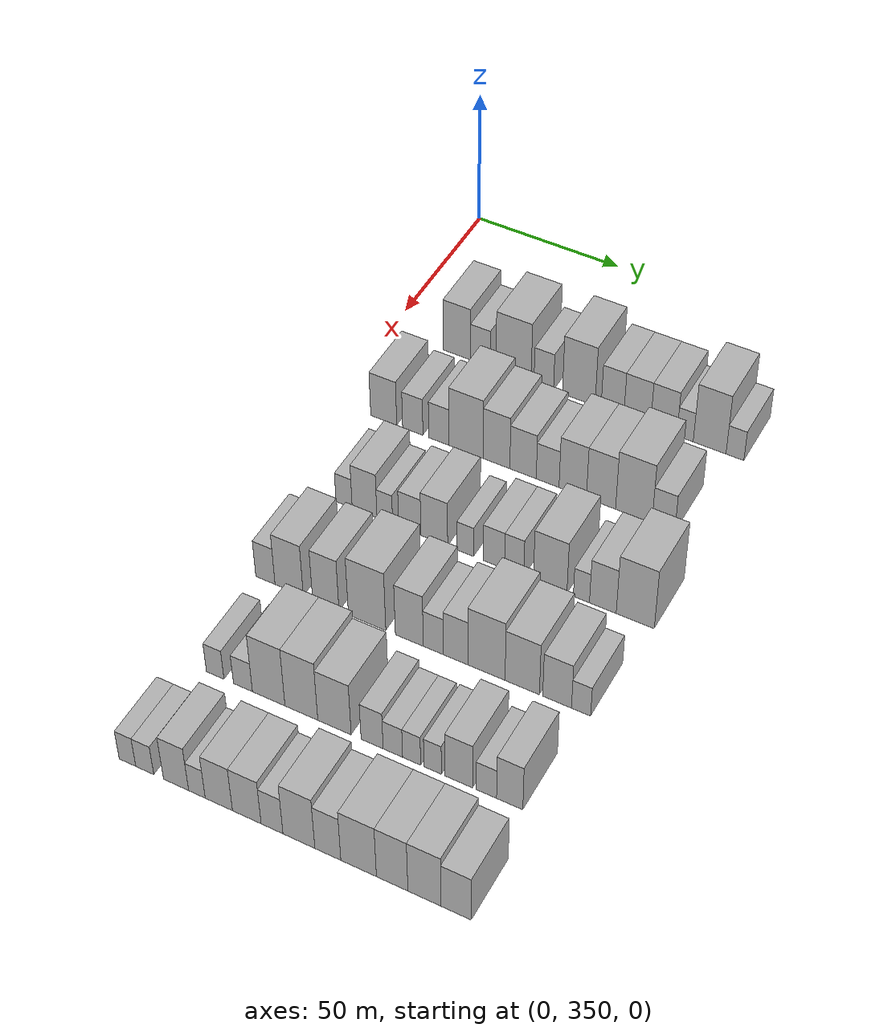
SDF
<sdf version="1.6">
 <world name="default">
  <model name="building_94">
   <static>1</static>
   <pose>50.0000 373.5735 0 0.000000 0.000000 0.000000</pose>
   <link name="link">
    <pose>0 0 10.50 0 0 0</pose>
    <collision name="collision"><geometry><box><size>20.0000 9.4008 21.0000</size></box></geometry></collision>
    <visual name="visual">
     <cast_shadows>0</cast_shadows>
     <geometry><box><size>20.0000 9.4008 21.0000</size></box></geometry>
     <material>
      <script>
       <uri>model://HANNAS_wall/materials/scripts</uri>
       <uri>model://HANNAS_wall/materials/textures</uri>
       <name>vrc/HANNAS_wall</name>
      </script>
     </material>
    </visual>
   </link>
  </model>
  <model name="building_95">
   <static>1</static>
   <pose>50.0000 381.6532 0 0.000000 0.000000 0.000000</pose>
   <link name="link">
    <pose>0 0 7.50 0 0 0</pose>
    <collision name="collision"><geometry><box><size>20.0000 6.7587 15.0000</size></box></geometry></collision>
    <visual name="visual">
     <cast_shadows>0</cast_shadows>
     <geometry><box><size>20.0000 6.7587 15.0000</size></box></geometry>
     <material>
      <script>
       <uri>model://HANNAS_wall/materials/scripts</uri>
       <uri>model://HANNAS_wall/materials/textures</uri>
       <name>vrc/HANNAS_wall</name>
      </script>
     </material>
    </visual>
   </link>
  </model>
  <model name="building_96">
   <static>1</static>
   <pose>50.0000 393.0215 0 0.000000 0.000000 0.000000</pose>
   <link name="link">
    <pose>0 0 12.00 0 0 0</pose>
    <collision name="collision"><geometry><box><size>20.0000 11.9779 24.0000</size></box></geometry></collision>
    <visual name="visual">
     <cast_shadows>0</cast_shadows>
     <geometry><box><size>20.0000 11.9779 24.0000</size></box></geometry>
     <material>
      <script>
       <uri>model://HANNAS_wall/materials/scripts</uri>
       <uri>model://HANNAS_wall/materials/textures</uri>
       <name>vrc/HANNAS_wall</name>
      </script>
     </material>
    </visual>
   </link>
  </model>
  <model name="building_97">
   <static>1</static>
   <pose>50.0000 403.3203 0 0.000000 0.000000 0.000000</pose>
   <link name="link">
    <pose>0 0 7.50 0 0 0</pose>
    <collision name="collision"><geometry><box><size>20.0000 6.6197 15.0000</size></box></geometry></collision>
    <visual name="visual">
     <cast_shadows>0</cast_shadows>
     <geometry><box><size>20.0000 6.6197 15.0000</size></box></geometry>
     <material>
      <script>
       <uri>model://HANNAS_wall/materials/scripts</uri>
       <uri>model://HANNAS_wall/materials/textures</uri>
       <name>vrc/HANNAS_wall</name>
      </script>
     </material>
    </visual>
   </link>
  </model>
  <model name="building_98">
   <static>1</static>
   <pose>50.0000 415.0914 0 0.000000 0.000000 0.000000</pose>
   <link name="link">
    <pose>0 0 12.00 0 0 0</pose>
    <collision name="collision"><geometry><box><size>20.0000 10.9224 24.0000</size></box></geometry></collision>
    <visual name="visual">
     <cast_shadows>0</cast_shadows>
     <geometry><box><size>20.0000 10.9224 24.0000</size></box></geometry>
     <material>
      <script>
       <uri>model://HANNAS_wall/materials/scripts</uri>
       <uri>model://HANNAS_wall/materials/textures</uri>
       <name>vrc/HANNAS_wall</name>
      </script>
     </material>
    </visual>
   </link>
  </model>
  <model name="building_99">
   <static>1</static>
   <pose>50.0000 426.3237 0 0.000000 0.000000 0.000000</pose>
   <link name="link">
    <pose>0 0 9.00 0 0 0</pose>
    <collision name="collision"><geometry><box><size>20.0000 7.5423 18.0000</size></box></geometry></collision>
    <visual name="visual">
     <cast_shadows>0</cast_shadows>
     <geometry><box><size>20.0000 7.5423 18.0000</size></box></geometry>
     <material>
      <script>
       <uri>model://HANNAS_wall/materials/scripts</uri>
       <uri>model://HANNAS_wall/materials/textures</uri>
       <name>vrc/HANNAS_wall</name>
      </script>
     </material>
    </visual>
   </link>
  </model>
  <model name="building_100">
   <static>1</static>
   <pose>50.0000 434.4855 0 0.000000 0.000000 0.000000</pose>
   <link name="link">
    <pose>0 0 9.00 0 0 0</pose>
    <collision name="collision"><geometry><box><size>20.0000 8.7814 18.0000</size></box></geometry></collision>
    <visual name="visual">
     <cast_shadows>0</cast_shadows>
     <geometry><box><size>20.0000 8.7814 18.0000</size></box></geometry>
     <material>
      <script>
       <uri>model://HANNAS_wall/materials/scripts</uri>
       <uri>model://HANNAS_wall/materials/textures</uri>
       <name>vrc/HANNAS_wall</name>
      </script>
     </material>
    </visual>
   </link>
  </model>
  <model name="building_101">
   <static>1</static>
   <pose>50.0000 443.1743 0 0.000000 0.000000 0.000000</pose>
   <link name="link">
    <pose>0 0 9.00 0 0 0</pose>
    <collision name="collision"><geometry><box><size>20.0000 8.5962 18.0000</size></box></geometry></collision>
    <visual name="visual">
     <cast_shadows>0</cast_shadows>
     <geometry><box><size>20.0000 8.5962 18.0000</size></box></geometry>
     <material>
      <script>
       <uri>model://HANNAS_wall/materials/scripts</uri>
       <uri>model://HANNAS_wall/materials/textures</uri>
       <name>vrc/HANNAS_wall</name>
      </script>
     </material>
    </visual>
   </link>
  </model>
  <model name="building_102">
   <static>1</static>
   <pose>50.0000 450.1158 0 0.000000 0.000000 0.000000</pose>
   <link name="link">
    <pose>0 0 6.00 0 0 0</pose>
    <collision name="collision"><geometry><box><size>20.0000 5.2868 12.0000</size></box></geometry></collision>
    <visual name="visual">
     <cast_shadows>0</cast_shadows>
     <geometry><box><size>20.0000 5.2868 12.0000</size></box></geometry>
     <material>
      <script>
       <uri>model://HANNAS_wall/materials/scripts</uri>
       <uri>model://HANNAS_wall/materials/textures</uri>
       <name>vrc/HANNAS_wall</name>
      </script>
     </material>
    </visual>
   </link>
  </model>
  <model name="building_103">
   <static>1</static>
   <pose>50.0000 458.0321 0 0.000000 0.000000 0.000000</pose>
   <link name="link">
    <pose>0 0 12.00 0 0 0</pose>
    <collision name="collision"><geometry><box><size>20.0000 10.5459 24.0000</size></box></geometry></collision>
    <visual name="visual">
     <cast_shadows>0</cast_shadows>
     <geometry><box><size>20.0000 10.5459 24.0000</size></box></geometry>
     <material>
      <script>
       <uri>model://HANNAS_wall/materials/scripts</uri>
       <uri>model://HANNAS_wall/materials/textures</uri>
       <name>vrc/HANNAS_wall</name>
      </script>
     </material>
    </visual>
   </link>
  </model>
  <model name="building_104">
   <static>1</static>
   <pose>50.0000 466.1558 0 0.000000 0.000000 0.000000</pose>
   <link name="link">
    <pose>0 0 6.00 0 0 0</pose>
    <collision name="collision"><geometry><box><size>20.0000 5.7013 12.0000</size></box></geometry></collision>
    <visual name="visual">
     <cast_shadows>0</cast_shadows>
     <geometry><box><size>20.0000 5.7013 12.0000</size></box></geometry>
     <material>
      <script>
       <uri>model://HANNAS_wall/materials/scripts</uri>
       <uri>model://HANNAS_wall/materials/textures</uri>
       <name>vrc/HANNAS_wall</name>
      </script>
     </material>
    </visual>
   </link>
  </model>
  <model name="building_225">
   <static>1</static>
   <pose>85.0000 367.4017 0 0.000000 0.000000 0.000000</pose>
   <link name="link">
    <pose>0 0 9.00 0 0 0</pose>
    <collision name="collision"><geometry><box><size>20.0000 8.8977 18.0000</size></box></geometry></collision>
    <visual name="visual">
     <cast_shadows>0</cast_shadows>
     <geometry><box><size>20.0000 8.8977 18.0000</size></box></geometry>
     <material>
      <script>
       <uri>model://HANNAS_wall/materials/scripts</uri>
       <uri>model://HANNAS_wall/materials/textures</uri>
       <name>vrc/HANNAS_wall</name>
      </script>
     </material>
    </visual>
   </link>
  </model>
  <model name="building_226">
   <static>1</static>
   <pose>85.0000 377.2938 0 0.000000 0.000000 0.000000</pose>
   <link name="link">
    <pose>0 0 7.50 0 0 0</pose>
    <collision name="collision"><geometry><box><size>20.0000 6.8866 15.0000</size></box></geometry></collision>
    <visual name="visual">
     <cast_shadows>0</cast_shadows>
     <geometry><box><size>20.0000 6.8866 15.0000</size></box></geometry>
     <material>
      <script>
       <uri>model://HANNAS_wall/materials/scripts</uri>
       <uri>model://HANNAS_wall/materials/textures</uri>
       <name>vrc/HANNAS_wall</name>
      </script>
     </material>
    </visual>
   </link>
  </model>
  <model name="building_227">
   <static>1</static>
   <pose>85.0000 386.1145 0 0.000000 0.000000 0.000000</pose>
   <link name="link">
    <pose>0 0 7.50 0 0 0</pose>
    <collision name="collision"><geometry><box><size>20.0000 6.7548 15.0000</size></box></geometry></collision>
    <visual name="visual">
     <cast_shadows>0</cast_shadows>
     <geometry><box><size>20.0000 6.7548 15.0000</size></box></geometry>
     <material>
      <script>
       <uri>model://HANNAS_wall/materials/scripts</uri>
       <uri>model://HANNAS_wall/materials/textures</uri>
       <name>vrc/HANNAS_wall</name>
      </script>
     </material>
    </visual>
   </link>
  </model>
  <model name="building_228">
   <static>1</static>
   <pose>85.0000 395.2129 0 0.000000 0.000000 0.000000</pose>
   <link name="link">
    <pose>0 0 12.00 0 0 0</pose>
    <collision name="collision"><geometry><box><size>20.0000 11.4420 24.0000</size></box></geometry></collision>
    <visual name="visual">
     <cast_shadows>0</cast_shadows>
     <geometry><box><size>20.0000 11.4420 24.0000</size></box></geometry>
     <material>
      <script>
       <uri>model://HANNAS_wall/materials/scripts</uri>
       <uri>model://HANNAS_wall/materials/textures</uri>
       <name>vrc/HANNAS_wall</name>
      </script>
     </material>
    </visual>
   </link>
  </model>
  <model name="building_229">
   <static>1</static>
   <pose>85.0000 405.3167 0 0.000000 0.000000 0.000000</pose>
   <link name="link">
    <pose>0 0 10.50 0 0 0</pose>
    <collision name="collision"><geometry><box><size>20.0000 8.7656 21.0000</size></box></geometry></collision>
    <visual name="visual">
     <cast_shadows>0</cast_shadows>
     <geometry><box><size>20.0000 8.7656 21.0000</size></box></geometry>
     <material>
      <script>
       <uri>model://HANNAS_wall/materials/scripts</uri>
       <uri>model://HANNAS_wall/materials/textures</uri>
       <name>vrc/HANNAS_wall</name>
      </script>
     </material>
    </visual>
   </link>
  </model>
  <model name="building_230">
   <static>1</static>
   <pose>85.0000 414.0182 0 0.000000 0.000000 0.000000</pose>
   <link name="link">
    <pose>0 0 9.00 0 0 0</pose>
    <collision name="collision"><geometry><box><size>20.0000 8.6374 18.0000</size></box></geometry></collision>
    <visual name="visual">
     <cast_shadows>0</cast_shadows>
     <geometry><box><size>20.0000 8.6374 18.0000</size></box></geometry>
     <material>
      <script>
       <uri>model://HANNAS_wall/materials/scripts</uri>
       <uri>model://HANNAS_wall/materials/textures</uri>
       <name>vrc/HANNAS_wall</name>
      </script>
     </material>
    </visual>
   </link>
  </model>
  <model name="building_231">
   <static>1</static>
   <pose>85.0000 422.0359 0 0.000000 0.000000 0.000000</pose>
   <link name="link">
    <pose>0 0 7.50 0 0 0</pose>
    <collision name="collision"><geometry><box><size>20.0000 7.3981 15.0000</size></box></geometry></collision>
    <visual name="visual">
     <cast_shadows>0</cast_shadows>
     <geometry><box><size>20.0000 7.3981 15.0000</size></box></geometry>
     <material>
      <script>
       <uri>model://HANNAS_wall/materials/scripts</uri>
       <uri>model://HANNAS_wall/materials/textures</uri>
       <name>vrc/HANNAS_wall</name>
      </script>
     </material>
    </visual>
   </link>
  </model>
  <model name="building_232">
   <static>1</static>
   <pose>85.0000 430.1456 0 0.000000 0.000000 0.000000</pose>
   <link name="link">
    <pose>0 0 10.50 0 0 0</pose>
    <collision name="collision"><geometry><box><size>20.0000 8.8214 21.0000</size></box></geometry></collision>
    <visual name="visual">
     <cast_shadows>0</cast_shadows>
     <geometry><box><size>20.0000 8.8214 21.0000</size></box></geometry>
     <material>
      <script>
       <uri>model://HANNAS_wall/materials/scripts</uri>
       <uri>model://HANNAS_wall/materials/textures</uri>
       <name>vrc/HANNAS_wall</name>
      </script>
     </material>
    </visual>
   </link>
  </model>
  <model name="building_233">
   <static>1</static>
   <pose>85.0000 439.2181 0 0.000000 0.000000 0.000000</pose>
   <link name="link">
    <pose>0 0 10.50 0 0 0</pose>
    <collision name="collision"><geometry><box><size>20.0000 9.3236 21.0000</size></box></geometry></collision>
    <visual name="visual">
     <cast_shadows>0</cast_shadows>
     <geometry><box><size>20.0000 9.3236 21.0000</size></box></geometry>
     <material>
      <script>
       <uri>model://HANNAS_wall/materials/scripts</uri>
       <uri>model://HANNAS_wall/materials/textures</uri>
       <name>vrc/HANNAS_wall</name>
      </script>
     </material>
    </visual>
   </link>
  </model>
  <model name="building_234">
   <static>1</static>
   <pose>85.0000 449.6372 0 0.000000 0.000000 0.000000</pose>
   <link name="link">
    <pose>0 0 12.00 0 0 0</pose>
    <collision name="collision"><geometry><box><size>20.0000 11.5146 24.0000</size></box></geometry></collision>
    <visual name="visual">
     <cast_shadows>0</cast_shadows>
     <geometry><box><size>20.0000 11.5146 24.0000</size></box></geometry>
     <material>
      <script>
       <uri>model://HANNAS_wall/materials/scripts</uri>
       <uri>model://HANNAS_wall/materials/textures</uri>
       <name>vrc/HANNAS_wall</name>
      </script>
     </material>
    </visual>
   </link>
  </model>
  <model name="building_235">
   <static>1</static>
   <pose>85.0000 458.9700 0 0.000000 0.000000 0.000000</pose>
   <link name="link">
    <pose>0 0 7.50 0 0 0</pose>
    <collision name="collision"><geometry><box><size>20.0000 7.1510 15.0000</size></box></geometry></collision>
    <visual name="visual">
     <cast_shadows>0</cast_shadows>
     <geometry><box><size>20.0000 7.1510 15.0000</size></box></geometry>
     <material>
      <script>
       <uri>model://HANNAS_wall/materials/scripts</uri>
       <uri>model://HANNAS_wall/materials/textures</uri>
       <name>vrc/HANNAS_wall</name>
      </script>
     </material>
    </visual>
   </link>
  </model>
  <model name="building_358">
   <static>1</static>
   <pose>120.0000 373.9284 0 0.000000 0.000000 0.000000</pose>
   <link name="link">
    <pose>0 0 6.00 0 0 0</pose>
    <collision name="collision"><geometry><box><size>20.0000 5.3863 12.0000</size></box></geometry></collision>
    <visual name="visual">
     <cast_shadows>0</cast_shadows>
     <geometry><box><size>20.0000 5.3863 12.0000</size></box></geometry>
     <material>
      <script>
       <uri>model://HANNAS_wall/materials/scripts</uri>
       <uri>model://HANNAS_wall/materials/textures</uri>
       <name>vrc/HANNAS_wall</name>
      </script>
     </material>
    </visual>
   </link>
  </model>
  <model name="building_359">
   <static>1</static>
   <pose>120.0000 380.7170 0 0.000000 0.000000 0.000000</pose>
   <link name="link">
    <pose>0 0 9.00 0 0 0</pose>
    <collision name="collision"><geometry><box><size>20.0000 8.1909 18.0000</size></box></geometry></collision>
    <visual name="visual">
     <cast_shadows>0</cast_shadows>
     <geometry><box><size>20.0000 8.1909 18.0000</size></box></geometry>
     <material>
      <script>
       <uri>model://HANNAS_wall/materials/scripts</uri>
       <uri>model://HANNAS_wall/materials/textures</uri>
       <name>vrc/HANNAS_wall</name>
      </script>
     </material>
    </visual>
   </link>
  </model>
  <model name="building_360">
   <static>1</static>
   <pose>120.0000 387.3831 0 0.000000 0.000000 0.000000</pose>
   <link name="link">
    <pose>0 0 6.00 0 0 0</pose>
    <collision name="collision"><geometry><box><size>20.0000 5.1412 12.0000</size></box></geometry></collision>
    <visual name="visual">
     <cast_shadows>0</cast_shadows>
     <geometry><box><size>20.0000 5.1412 12.0000</size></box></geometry>
     <material>
      <script>
       <uri>model://HANNAS_wall/materials/scripts</uri>
       <uri>model://HANNAS_wall/materials/textures</uri>
       <name>vrc/HANNAS_wall</name>
      </script>
     </material>
    </visual>
   </link>
  </model>
  <model name="building_361">
   <static>1</static>
   <pose>120.0000 395.5715 0 0.000000 0.000000 0.000000</pose>
   <link name="link">
    <pose>0 0 7.50 0 0 0</pose>
    <collision name="collision"><geometry><box><size>20.0000 7.2357 15.0000</size></box></geometry></collision>
    <visual name="visual">
     <cast_shadows>0</cast_shadows>
     <geometry><box><size>20.0000 7.2357 15.0000</size></box></geometry>
     <material>
      <script>
       <uri>model://HANNAS_wall/materials/scripts</uri>
       <uri>model://HANNAS_wall/materials/textures</uri>
       <name>vrc/HANNAS_wall</name>
      </script>
     </material>
    </visual>
   </link>
  </model>
  <model name="building_362">
   <static>1</static>
   <pose>120.0000 403.4983 0 0.000000 0.000000 0.000000</pose>
   <link name="link">
    <pose>0 0 9.00 0 0 0</pose>
    <collision name="collision"><geometry><box><size>20.0000 8.6179 18.0000</size></box></geometry></collision>
    <visual name="visual">
     <cast_shadows>0</cast_shadows>
     <geometry><box><size>20.0000 8.6179 18.0000</size></box></geometry>
     <material>
      <script>
       <uri>model://HANNAS_wall/materials/scripts</uri>
       <uri>model://HANNAS_wall/materials/textures</uri>
       <name>vrc/HANNAS_wall</name>
      </script>
     </material>
    </visual>
   </link>
  </model>
  <model name="building_363">
   <static>1</static>
   <pose>120.0000 413.4735 0 0.000000 0.000000 0.000000</pose>
   <link name="link">
    <pose>0 0 6.00 0 0 0</pose>
    <collision name="collision"><geometry><box><size>20.0000 5.3325 12.0000</size></box></geometry></collision>
    <visual name="visual">
     <cast_shadows>0</cast_shadows>
     <geometry><box><size>20.0000 5.3325 12.0000</size></box></geometry>
     <material>
      <script>
       <uri>model://HANNAS_wall/materials/scripts</uri>
       <uri>model://HANNAS_wall/materials/textures</uri>
       <name>vrc/HANNAS_wall</name>
      </script>
     </material>
    </visual>
   </link>
  </model>
  <model name="building_364">
   <static>1</static>
   <pose>120.0000 422.5441 0 0.000000 0.000000 0.000000</pose>
   <link name="link">
    <pose>0 0 7.50 0 0 0</pose>
    <collision name="collision"><geometry><box><size>20.0000 6.8087 15.0000</size></box></geometry></collision>
    <visual name="visual">
     <cast_shadows>0</cast_shadows>
     <geometry><box><size>20.0000 6.8087 15.0000</size></box></geometry>
     <material>
      <script>
       <uri>model://HANNAS_wall/materials/scripts</uri>
       <uri>model://HANNAS_wall/materials/textures</uri>
       <name>vrc/HANNAS_wall</name>
      </script>
     </material>
    </visual>
   </link>
  </model>
  <model name="building_365">
   <static>1</static>
   <pose>120.0000 428.9756 0 0.000000 0.000000 0.000000</pose>
   <link name="link">
    <pose>0 0 7.50 0 0 0</pose>
    <collision name="collision"><geometry><box><size>20.0000 6.0543 15.0000</size></box></geometry></collision>
    <visual name="visual">
     <cast_shadows>0</cast_shadows>
     <geometry><box><size>20.0000 6.0543 15.0000</size></box></geometry>
     <material>
      <script>
       <uri>model://HANNAS_wall/materials/scripts</uri>
       <uri>model://HANNAS_wall/materials/textures</uri>
       <name>vrc/HANNAS_wall</name>
      </script>
     </material>
    </visual>
   </link>
  </model>
  <model name="building_366">
   <static>1</static>
   <pose>120.0000 440.2151 0 0.000000 0.000000 0.000000</pose>
   <link name="link">
    <pose>0 0 10.50 0 0 0</pose>
    <collision name="collision"><geometry><box><size>20.0000 10.4247 21.0000</size></box></geometry></collision>
    <visual name="visual">
     <cast_shadows>0</cast_shadows>
     <geometry><box><size>20.0000 10.4247 21.0000</size></box></geometry>
     <material>
      <script>
       <uri>model://HANNAS_wall/materials/scripts</uri>
       <uri>model://HANNAS_wall/materials/textures</uri>
       <name>vrc/HANNAS_wall</name>
      </script>
     </material>
    </visual>
   </link>
  </model>
  <model name="building_367">
   <static>1</static>
   <pose>120.0000 449.9105 0 0.000000 0.000000 0.000000</pose>
   <link name="link">
    <pose>0 0 6.00 0 0 0</pose>
    <collision name="collision"><geometry><box><size>20.0000 4.9662 12.0000</size></box></geometry></collision>
    <visual name="visual">
     <cast_shadows>0</cast_shadows>
     <geometry><box><size>20.0000 4.9662 12.0000</size></box></geometry>
     <material>
      <script>
       <uri>model://HANNAS_wall/materials/scripts</uri>
       <uri>model://HANNAS_wall/materials/textures</uri>
       <name>vrc/HANNAS_wall</name>
      </script>
     </material>
    </visual>
   </link>
  </model>
  <model name="building_368">
   <static>1</static>
   <pose>120.0000 456.4902 0 0.000000 0.000000 0.000000</pose>
   <link name="link">
    <pose>0 0 9.00 0 0 0</pose>
    <collision name="collision"><geometry><box><size>20.0000 8.1932 18.0000</size></box></geometry></collision>
    <visual name="visual">
     <cast_shadows>0</cast_shadows>
     <geometry><box><size>20.0000 8.1932 18.0000</size></box></geometry>
     <material>
      <script>
       <uri>model://HANNAS_wall/materials/scripts</uri>
       <uri>model://HANNAS_wall/materials/textures</uri>
       <name>vrc/HANNAS_wall</name>
      </script>
     </material>
    </visual>
   </link>
  </model>
  <model name="building_369">
   <static>1</static>
   <pose>120.0000 466.3614 0 0.000000 0.000000 0.000000</pose>
   <link name="link">
    <pose>0 0 12.00 0 0 0</pose>
    <collision name="collision"><geometry><box><size>20.0000 11.5491 24.0000</size></box></geometry></collision>
    <visual name="visual">
     <cast_shadows>0</cast_shadows>
     <geometry><box><size>20.0000 11.5491 24.0000</size></box></geometry>
     <material>
      <script>
       <uri>model://HANNAS_wall/materials/scripts</uri>
       <uri>model://HANNAS_wall/materials/textures</uri>
       <name>vrc/HANNAS_wall</name>
      </script>
     </material>
    </visual>
   </link>
  </model>
  <model name="building_486">
   <static>1</static>
   <pose>155.0000 368.7155 0 0.000000 0.000000 0.000000</pose>
   <link name="link">
    <pose>0 0 7.50 0 0 0</pose>
    <collision name="collision"><geometry><box><size>20.0000 6.2673 15.0000</size></box></geometry></collision>
    <visual name="visual">
     <cast_shadows>0</cast_shadows>
     <geometry><box><size>20.0000 6.2673 15.0000</size></box></geometry>
     <material>
      <script>
       <uri>model://HANNAS_wall/materials/scripts</uri>
       <uri>model://HANNAS_wall/materials/textures</uri>
       <name>vrc/HANNAS_wall</name>
      </script>
     </material>
    </visual>
   </link>
  </model>
  <model name="building_487">
   <static>1</static>
   <pose>155.0000 376.4450 0 0.000000 0.000000 0.000000</pose>
   <link name="link">
    <pose>0 0 10.50 0 0 0</pose>
    <collision name="collision"><geometry><box><size>20.0000 9.1917 21.0000</size></box></geometry></collision>
    <visual name="visual">
     <cast_shadows>0</cast_shadows>
     <geometry><box><size>20.0000 9.1917 21.0000</size></box></geometry>
     <material>
      <script>
       <uri>model://HANNAS_wall/materials/scripts</uri>
       <uri>model://HANNAS_wall/materials/textures</uri>
       <name>vrc/HANNAS_wall</name>
      </script>
     </material>
    </visual>
   </link>
  </model>
  <model name="building_488">
   <static>1</static>
   <pose>155.0000 388.2661 0 0.000000 0.000000 0.000000</pose>
   <link name="link">
    <pose>0 0 10.50 0 0 0</pose>
    <collision name="collision"><geometry><box><size>20.0000 8.4505 21.0000</size></box></geometry></collision>
    <visual name="visual">
     <cast_shadows>0</cast_shadows>
     <geometry><box><size>20.0000 8.4505 21.0000</size></box></geometry>
     <material>
      <script>
       <uri>model://HANNAS_wall/materials/scripts</uri>
       <uri>model://HANNAS_wall/materials/textures</uri>
       <name>vrc/HANNAS_wall</name>
      </script>
     </material>
    </visual>
   </link>
  </model>
  <model name="building_489">
   <static>1</static>
   <pose>155.0000 401.4040 0 0.000000 0.000000 0.000000</pose>
   <link name="link">
    <pose>0 0 12.00 0 0 0</pose>
    <collision name="collision"><geometry><box><size>20.0000 11.8253 24.0000</size></box></geometry></collision>
    <visual name="visual">
     <cast_shadows>0</cast_shadows>
     <geometry><box><size>20.0000 11.8253 24.0000</size></box></geometry>
     <material>
      <script>
       <uri>model://HANNAS_wall/materials/scripts</uri>
       <uri>model://HANNAS_wall/materials/textures</uri>
       <name>vrc/HANNAS_wall</name>
      </script>
     </material>
    </visual>
   </link>
  </model>
  <model name="building_490">
   <static>1</static>
   <pose>155.0000 414.6759 0 0.000000 0.000000 0.000000</pose>
   <link name="link">
    <pose>0 0 10.50 0 0 0</pose>
    <collision name="collision"><geometry><box><size>20.0000 8.7185 21.0000</size></box></geometry></collision>
    <visual name="visual">
     <cast_shadows>0</cast_shadows>
     <geometry><box><size>20.0000 8.7185 21.0000</size></box></geometry>
     <material>
      <script>
       <uri>model://HANNAS_wall/materials/scripts</uri>
       <uri>model://HANNAS_wall/materials/textures</uri>
       <name>vrc/HANNAS_wall</name>
      </script>
     </material>
    </visual>
   </link>
  </model>
  <model name="building_491">
   <static>1</static>
   <pose>155.0000 422.1249 0 0.000000 0.000000 0.000000</pose>
   <link name="link">
    <pose>0 0 7.50 0 0 0</pose>
    <collision name="collision"><geometry><box><size>20.0000 6.1794 15.0000</size></box></geometry></collision>
    <visual name="visual">
     <cast_shadows>0</cast_shadows>
     <geometry><box><size>20.0000 6.1794 15.0000</size></box></geometry>
     <material>
      <script>
       <uri>model://HANNAS_wall/materials/scripts</uri>
       <uri>model://HANNAS_wall/materials/textures</uri>
       <name>vrc/HANNAS_wall</name>
      </script>
     </material>
    </visual>
   </link>
  </model>
  <model name="building_492">
   <static>1</static>
   <pose>155.0000 428.9539 0 0.000000 0.000000 0.000000</pose>
   <link name="link">
    <pose>0 0 9.00 0 0 0</pose>
    <collision name="collision"><geometry><box><size>20.0000 7.4786 18.0000</size></box></geometry></collision>
    <visual name="visual">
     <cast_shadows>0</cast_shadows>
     <geometry><box><size>20.0000 7.4786 18.0000</size></box></geometry>
     <material>
      <script>
       <uri>model://HANNAS_wall/materials/scripts</uri>
       <uri>model://HANNAS_wall/materials/textures</uri>
       <name>vrc/HANNAS_wall</name>
      </script>
     </material>
    </visual>
   </link>
  </model>
  <model name="building_493">
   <static>1</static>
   <pose>155.0000 438.3753 0 0.000000 0.000000 0.000000</pose>
   <link name="link">
    <pose>0 0 12.00 0 0 0</pose>
    <collision name="collision"><geometry><box><size>20.0000 11.3643 24.0000</size></box></geometry></collision>
    <visual name="visual">
     <cast_shadows>0</cast_shadows>
     <geometry><box><size>20.0000 11.3643 24.0000</size></box></geometry>
     <material>
      <script>
       <uri>model://HANNAS_wall/materials/scripts</uri>
       <uri>model://HANNAS_wall/materials/textures</uri>
       <name>vrc/HANNAS_wall</name>
      </script>
     </material>
    </visual>
   </link>
  </model>
  <model name="building_494">
   <static>1</static>
   <pose>155.0000 449.2181 0 0.000000 0.000000 0.000000</pose>
   <link name="link">
    <pose>0 0 10.50 0 0 0</pose>
    <collision name="collision"><geometry><box><size>20.0000 10.3212 21.0000</size></box></geometry></collision>
    <visual name="visual">
     <cast_shadows>0</cast_shadows>
     <geometry><box><size>20.0000 10.3212 21.0000</size></box></geometry>
     <material>
      <script>
       <uri>model://HANNAS_wall/materials/scripts</uri>
       <uri>model://HANNAS_wall/materials/textures</uri>
       <name>vrc/HANNAS_wall</name>
      </script>
     </material>
    </visual>
   </link>
  </model>
  <model name="building_495">
   <static>1</static>
   <pose>155.0000 459.6568 0 0.000000 0.000000 0.000000</pose>
   <link name="link">
    <pose>0 0 9.00 0 0 0</pose>
    <collision name="collision"><geometry><box><size>20.0000 8.5561 18.0000</size></box></geometry></collision>
    <visual name="visual">
     <cast_shadows>0</cast_shadows>
     <geometry><box><size>20.0000 8.5561 18.0000</size></box></geometry>
     <material>
      <script>
       <uri>model://HANNAS_wall/materials/scripts</uri>
       <uri>model://HANNAS_wall/materials/textures</uri>
       <name>vrc/HANNAS_wall</name>
      </script>
     </material>
    </visual>
   </link>
  </model>
  <model name="building_496">
   <static>1</static>
   <pose>155.0000 466.7615 0 0.000000 0.000000 0.000000</pose>
   <link name="link">
    <pose>0 0 6.00 0 0 0</pose>
    <collision name="collision"><geometry><box><size>20.0000 5.6532 12.0000</size></box></geometry></collision>
    <visual name="visual">
     <cast_shadows>0</cast_shadows>
     <geometry><box><size>20.0000 5.6532 12.0000</size></box></geometry>
     <material>
      <script>
       <uri>model://HANNAS_wall/materials/scripts</uri>
       <uri>model://HANNAS_wall/materials/textures</uri>
       <name>vrc/HANNAS_wall</name>
      </script>
     </material>
    </visual>
   </link>
  </model>
  <model name="building_617">
   <static>1</static>
   <pose>190.0000 374.2167 0 0.000000 0.000000 0.000000</pose>
   <link name="link">
    <pose>0 0 6.00 0 0 0</pose>
    <collision name="collision"><geometry><box><size>20.0000 5.5605 12.0000</size></box></geometry></collision>
    <visual name="visual">
     <cast_shadows>0</cast_shadows>
     <geometry><box><size>20.0000 5.5605 12.0000</size></box></geometry>
     <material>
      <script>
       <uri>model://HANNAS_wall/materials/scripts</uri>
       <uri>model://HANNAS_wall/materials/textures</uri>
       <name>vrc/HANNAS_wall</name>
      </script>
     </material>
    </visual>
   </link>
  </model>
  <model name="building_618">
   <static>1</static>
   <pose>190.0000 382.9838 0 0.000000 0.000000 0.000000</pose>
   <link name="link">
    <pose>0 0 6.00 0 0 0</pose>
    <collision name="collision"><geometry><box><size>20.0000 5.9737 12.0000</size></box></geometry></collision>
    <visual name="visual">
     <cast_shadows>0</cast_shadows>
     <geometry><box><size>20.0000 5.9737 12.0000</size></box></geometry>
     <material>
      <script>
       <uri>model://HANNAS_wall/materials/scripts</uri>
       <uri>model://HANNAS_wall/materials/textures</uri>
       <name>vrc/HANNAS_wall</name>
      </script>
     </material>
    </visual>
   </link>
  </model>
  <model name="building_619">
   <static>1</static>
   <pose>190.0000 391.0477 0 0.000000 0.000000 0.000000</pose>
   <link name="link">
    <pose>0 0 12.00 0 0 0</pose>
    <collision name="collision"><geometry><box><size>20.0000 10.1540 24.0000</size></box></geometry></collision>
    <visual name="visual">
     <cast_shadows>0</cast_shadows>
     <geometry><box><size>20.0000 10.1540 24.0000</size></box></geometry>
     <material>
      <script>
       <uri>model://HANNAS_wall/materials/scripts</uri>
       <uri>model://HANNAS_wall/materials/textures</uri>
       <name>vrc/HANNAS_wall</name>
      </script>
     </material>
    </visual>
   </link>
  </model>
  <model name="building_620">
   <static>1</static>
   <pose>190.0000 401.1900 0 0.000000 0.000000 0.000000</pose>
   <link name="link">
    <pose>0 0 12.00 0 0 0</pose>
    <collision name="collision"><geometry><box><size>20.0000 10.1306 24.0000</size></box></geometry></collision>
    <visual name="visual">
     <cast_shadows>0</cast_shadows>
     <geometry><box><size>20.0000 10.1306 24.0000</size></box></geometry>
     <material>
      <script>
       <uri>model://HANNAS_wall/materials/scripts</uri>
       <uri>model://HANNAS_wall/materials/textures</uri>
       <name>vrc/HANNAS_wall</name>
      </script>
     </material>
    </visual>
   </link>
  </model>
  <model name="building_621">
   <static>1</static>
   <pose>190.0000 411.3506 0 0.000000 0.000000 0.000000</pose>
   <link name="link">
    <pose>0 0 10.50 0 0 0</pose>
    <collision name="collision"><geometry><box><size>20.0000 10.1905 21.0000</size></box></geometry></collision>
    <visual name="visual">
     <cast_shadows>0</cast_shadows>
     <geometry><box><size>20.0000 10.1905 21.0000</size></box></geometry>
     <material>
      <script>
       <uri>model://HANNAS_wall/materials/scripts</uri>
       <uri>model://HANNAS_wall/materials/textures</uri>
       <name>vrc/HANNAS_wall</name>
      </script>
     </material>
    </visual>
   </link>
  </model>
  <model name="building_622">
   <static>1</static>
   <pose>190.0000 422.7750 0 0.000000 0.000000 0.000000</pose>
   <link name="link">
    <pose>0 0 7.50 0 0 0</pose>
    <collision name="collision"><geometry><box><size>20.0000 6.6584 15.0000</size></box></geometry></collision>
    <visual name="visual">
     <cast_shadows>0</cast_shadows>
     <geometry><box><size>20.0000 6.6584 15.0000</size></box></geometry>
     <material>
      <script>
       <uri>model://HANNAS_wall/materials/scripts</uri>
       <uri>model://HANNAS_wall/materials/textures</uri>
       <name>vrc/HANNAS_wall</name>
      </script>
     </material>
    </visual>
   </link>
  </model>
  <model name="building_623">
   <static>1</static>
   <pose>190.0000 429.0194 0 0.000000 0.000000 0.000000</pose>
   <link name="link">
    <pose>0 0 6.00 0 0 0</pose>
    <collision name="collision"><geometry><box><size>20.0000 5.8303 12.0000</size></box></geometry></collision>
    <visual name="visual">
     <cast_shadows>0</cast_shadows>
     <geometry><box><size>20.0000 5.8303 12.0000</size></box></geometry>
     <material>
      <script>
       <uri>model://HANNAS_wall/materials/scripts</uri>
       <uri>model://HANNAS_wall/materials/textures</uri>
       <name>vrc/HANNAS_wall</name>
      </script>
     </material>
    </visual>
   </link>
  </model>
  <model name="building_624">
   <static>1</static>
   <pose>190.0000 434.6247 0 0.000000 0.000000 0.000000</pose>
   <link name="link">
    <pose>0 0 6.00 0 0 0</pose>
    <collision name="collision"><geometry><box><size>20.0000 5.3804 12.0000</size></box></geometry></collision>
    <visual name="visual">
     <cast_shadows>0</cast_shadows>
     <geometry><box><size>20.0000 5.3804 12.0000</size></box></geometry>
     <material>
      <script>
       <uri>model://HANNAS_wall/materials/scripts</uri>
       <uri>model://HANNAS_wall/materials/textures</uri>
       <name>vrc/HANNAS_wall</name>
      </script>
     </material>
    </visual>
   </link>
  </model>
  <model name="building_625">
   <static>1</static>
   <pose>190.0000 440.8913 0 0.000000 0.000000 0.000000</pose>
   <link name="link">
    <pose>0 0 6.00 0 0 0</pose>
    <collision name="collision"><geometry><box><size>20.0000 5.1529 12.0000</size></box></geometry></collision>
    <visual name="visual">
     <cast_shadows>0</cast_shadows>
     <geometry><box><size>20.0000 5.1529 12.0000</size></box></geometry>
     <material>
      <script>
       <uri>model://HANNAS_wall/materials/scripts</uri>
       <uri>model://HANNAS_wall/materials/textures</uri>
       <name>vrc/HANNAS_wall</name>
      </script>
     </material>
    </visual>
   </link>
  </model>
  <model name="building_626">
   <static>1</static>
   <pose>190.0000 448.5461 0 0.000000 0.000000 0.000000</pose>
   <link name="link">
    <pose>0 0 9.00 0 0 0</pose>
    <collision name="collision"><geometry><box><size>20.0000 8.1566 18.0000</size></box></geometry></collision>
    <visual name="visual">
     <cast_shadows>0</cast_shadows>
     <geometry><box><size>20.0000 8.1566 18.0000</size></box></geometry>
     <material>
      <script>
       <uri>model://HANNAS_wall/materials/scripts</uri>
       <uri>model://HANNAS_wall/materials/textures</uri>
       <name>vrc/HANNAS_wall</name>
      </script>
     </material>
    </visual>
   </link>
  </model>
  <model name="building_627">
   <static>1</static>
   <pose>190.0000 456.5995 0 0.000000 0.000000 0.000000</pose>
   <link name="link">
    <pose>0 0 6.00 0 0 0</pose>
    <collision name="collision"><geometry><box><size>20.0000 5.9503 12.0000</size></box></geometry></collision>
    <visual name="visual">
     <cast_shadows>0</cast_shadows>
     <geometry><box><size>20.0000 5.9503 12.0000</size></box></geometry>
     <material>
      <script>
       <uri>model://HANNAS_wall/materials/scripts</uri>
       <uri>model://HANNAS_wall/materials/textures</uri>
       <name>vrc/HANNAS_wall</name>
      </script>
     </material>
    </visual>
   </link>
  </model>
  <model name="building_628">
   <static>1</static>
   <pose>190.0000 463.3678 0 0.000000 0.000000 0.000000</pose>
   <link name="link">
    <pose>0 0 9.00 0 0 0</pose>
    <collision name="collision"><geometry><box><size>20.0000 7.5863 18.0000</size></box></geometry></collision>
    <visual name="visual">
     <cast_shadows>0</cast_shadows>
     <geometry><box><size>20.0000 7.5863 18.0000</size></box></geometry>
     <material>
      <script>
       <uri>model://HANNAS_wall/materials/scripts</uri>
       <uri>model://HANNAS_wall/materials/textures</uri>
       <name>vrc/HANNAS_wall</name>
      </script>
     </material>
    </visual>
   </link>
  </model>
  <model name="building_744">
   <static>1</static>
   <pose>225.0000 369.3010 0 0.000000 0.000000 0.000000</pose>
   <link name="link">
    <pose>0 0 6.00 0 0 0</pose>
    <collision name="collision"><geometry><box><size>20.0000 5.1548 12.0000</size></box></geometry></collision>
    <visual name="visual">
     <cast_shadows>0</cast_shadows>
     <geometry><box><size>20.0000 5.1548 12.0000</size></box></geometry>
     <material>
      <script>
       <uri>model://HANNAS_wall/materials/scripts</uri>
       <uri>model://HANNAS_wall/materials/textures</uri>
       <name>vrc/HANNAS_wall</name>
      </script>
     </material>
    </visual>
   </link>
  </model>
  <model name="building_745">
   <static>1</static>
   <pose>225.0000 374.6687 0 0.000000 0.000000 0.000000</pose>
   <link name="link">
    <pose>0 0 6.00 0 0 0</pose>
    <collision name="collision"><geometry><box><size>20.0000 5.5807 12.0000</size></box></geometry></collision>
    <visual name="visual">
     <cast_shadows>0</cast_shadows>
     <geometry><box><size>20.0000 5.5807 12.0000</size></box></geometry>
     <material>
      <script>
       <uri>model://HANNAS_wall/materials/scripts</uri>
       <uri>model://HANNAS_wall/materials/textures</uri>
       <name>vrc/HANNAS_wall</name>
      </script>
     </material>
    </visual>
   </link>
  </model>
  <model name="building_746">
   <static>1</static>
   <pose>225.0000 384.3185 0 0.000000 0.000000 0.000000</pose>
   <link name="link">
    <pose>0 0 9.00 0 0 0</pose>
    <collision name="collision"><geometry><box><size>20.0000 7.7189 18.0000</size></box></geometry></collision>
    <visual name="visual">
     <cast_shadows>0</cast_shadows>
     <geometry><box><size>20.0000 7.7189 18.0000</size></box></geometry>
     <material>
      <script>
       <uri>model://HANNAS_wall/materials/scripts</uri>
       <uri>model://HANNAS_wall/materials/textures</uri>
       <name>vrc/HANNAS_wall</name>
      </script>
     </material>
    </visual>
   </link>
  </model>
  <model name="building_747">
   <static>1</static>
   <pose>225.0000 390.7064 0 0.000000 0.000000 0.000000</pose>
   <link name="link">
    <pose>0 0 6.00 0 0 0</pose>
    <collision name="collision"><geometry><box><size>20.0000 5.0570 12.0000</size></box></geometry></collision>
    <visual name="visual">
     <cast_shadows>0</cast_shadows>
     <geometry><box><size>20.0000 5.0570 12.0000</size></box></geometry>
     <material>
      <script>
       <uri>model://HANNAS_wall/materials/scripts</uri>
       <uri>model://HANNAS_wall/materials/textures</uri>
       <name>vrc/HANNAS_wall</name>
      </script>
     </material>
    </visual>
   </link>
  </model>
  <model name="building_748">
   <static>1</static>
   <pose>225.0000 397.3607 0 0.000000 0.000000 0.000000</pose>
   <link name="link">
    <pose>0 0 9.00 0 0 0</pose>
    <collision name="collision"><geometry><box><size>20.0000 8.2517 18.0000</size></box></geometry></collision>
    <visual name="visual">
     <cast_shadows>0</cast_shadows>
     <geometry><box><size>20.0000 8.2517 18.0000</size></box></geometry>
     <material>
      <script>
       <uri>model://HANNAS_wall/materials/scripts</uri>
       <uri>model://HANNAS_wall/materials/textures</uri>
       <name>vrc/HANNAS_wall</name>
      </script>
     </material>
    </visual>
   </link>
  </model>
  <model name="building_749">
   <static>1</static>
   <pose>225.0000 405.7806 0 0.000000 0.000000 0.000000</pose>
   <link name="link">
    <pose>0 0 9.00 0 0 0</pose>
    <collision name="collision"><geometry><box><size>20.0000 8.5881 18.0000</size></box></geometry></collision>
    <visual name="visual">
     <cast_shadows>0</cast_shadows>
     <geometry><box><size>20.0000 8.5881 18.0000</size></box></geometry>
     <material>
      <script>
       <uri>model://HANNAS_wall/materials/scripts</uri>
       <uri>model://HANNAS_wall/materials/textures</uri>
       <name>vrc/HANNAS_wall</name>
      </script>
     </material>
    </visual>
   </link>
  </model>
  <model name="building_750">
   <static>1</static>
   <pose>225.0000 413.3160 0 0.000000 0.000000 0.000000</pose>
   <link name="link">
    <pose>0 0 7.50 0 0 0</pose>
    <collision name="collision"><geometry><box><size>20.0000 6.4827 15.0000</size></box></geometry></collision>
    <visual name="visual">
     <cast_shadows>0</cast_shadows>
     <geometry><box><size>20.0000 6.4827 15.0000</size></box></geometry>
     <material>
      <script>
       <uri>model://HANNAS_wall/materials/scripts</uri>
       <uri>model://HANNAS_wall/materials/textures</uri>
       <name>vrc/HANNAS_wall</name>
      </script>
     </material>
    </visual>
   </link>
  </model>
  <model name="building_751">
   <static>1</static>
   <pose>225.0000 421.2591 0 0.000000 0.000000 0.000000</pose>
   <link name="link">
    <pose>0 0 10.50 0 0 0</pose>
    <collision name="collision"><geometry><box><size>20.0000 9.4036 21.0000</size></box></geometry></collision>
    <visual name="visual">
     <cast_shadows>0</cast_shadows>
     <geometry><box><size>20.0000 9.4036 21.0000</size></box></geometry>
     <material>
      <script>
       <uri>model://HANNAS_wall/materials/scripts</uri>
       <uri>model://HANNAS_wall/materials/textures</uri>
       <name>vrc/HANNAS_wall</name>
      </script>
     </material>
    </visual>
   </link>
  </model>
  <model name="building_752">
   <static>1</static>
   <pose>225.0000 429.7477 0 0.000000 0.000000 0.000000</pose>
   <link name="link">
    <pose>0 0 9.00 0 0 0</pose>
    <collision name="collision"><geometry><box><size>20.0000 7.5735 18.0000</size></box></geometry></collision>
    <visual name="visual">
     <cast_shadows>0</cast_shadows>
     <geometry><box><size>20.0000 7.5735 18.0000</size></box></geometry>
     <material>
      <script>
       <uri>model://HANNAS_wall/materials/scripts</uri>
       <uri>model://HANNAS_wall/materials/textures</uri>
       <name>vrc/HANNAS_wall</name>
      </script>
     </material>
    </visual>
   </link>
  </model>
  <model name="building_753">
   <static>1</static>
   <pose>225.0000 438.6698 0 0.000000 0.000000 0.000000</pose>
   <link name="link">
    <pose>0 0 10.50 0 0 0</pose>
    <collision name="collision"><geometry><box><size>20.0000 10.2707 21.0000</size></box></geometry></collision>
    <visual name="visual">
     <cast_shadows>0</cast_shadows>
     <geometry><box><size>20.0000 10.2707 21.0000</size></box></geometry>
     <material>
      <script>
       <uri>model://HANNAS_wall/materials/scripts</uri>
       <uri>model://HANNAS_wall/materials/textures</uri>
       <name>vrc/HANNAS_wall</name>
      </script>
     </material>
    </visual>
   </link>
  </model>
  <model name="building_754">
   <static>1</static>
   <pose>225.0000 448.3074 0 0.000000 0.000000 0.000000</pose>
   <link name="link">
    <pose>0 0 10.50 0 0 0</pose>
    <collision name="collision"><geometry><box><size>20.0000 9.0044 21.0000</size></box></geometry></collision>
    <visual name="visual">
     <cast_shadows>0</cast_shadows>
     <geometry><box><size>20.0000 9.0044 21.0000</size></box></geometry>
     <material>
      <script>
       <uri>model://HANNAS_wall/materials/scripts</uri>
       <uri>model://HANNAS_wall/materials/textures</uri>
       <name>vrc/HANNAS_wall</name>
      </script>
     </material>
    </visual>
   </link>
  </model>
  <model name="building_755">
   <static>1</static>
   <pose>225.0000 457.4996 0 0.000000 0.000000 0.000000</pose>
   <link name="link">
    <pose>0 0 10.50 0 0 0</pose>
    <collision name="collision"><geometry><box><size>20.0000 9.3800 21.0000</size></box></geometry></collision>
    <visual name="visual">
     <cast_shadows>0</cast_shadows>
     <geometry><box><size>20.0000 9.3800 21.0000</size></box></geometry>
     <material>
      <script>
       <uri>model://HANNAS_wall/materials/scripts</uri>
       <uri>model://HANNAS_wall/materials/textures</uri>
       <name>vrc/HANNAS_wall</name>
      </script>
     </material>
    </visual>
   </link>
  </model>
  <model name="building_756">
   <static>1</static>
   <pose>225.0000 466.4202 0 0.000000 0.000000 0.000000</pose>
   <link name="link">
    <pose>0 0 9.00 0 0 0</pose>
    <collision name="collision"><geometry><box><size>20.0000 8.4611 18.0000</size></box></geometry></collision>
    <visual name="visual">
     <cast_shadows>0</cast_shadows>
     <geometry><box><size>20.0000 8.4611 18.0000</size></box></geometry>
     <material>
      <script>
       <uri>model://HANNAS_wall/materials/scripts</uri>
       <uri>model://HANNAS_wall/materials/textures</uri>
       <name>vrc/HANNAS_wall</name>
      </script>
     </material>
    </visual>
   </link>
  </model>
 </world>
</sdf>
